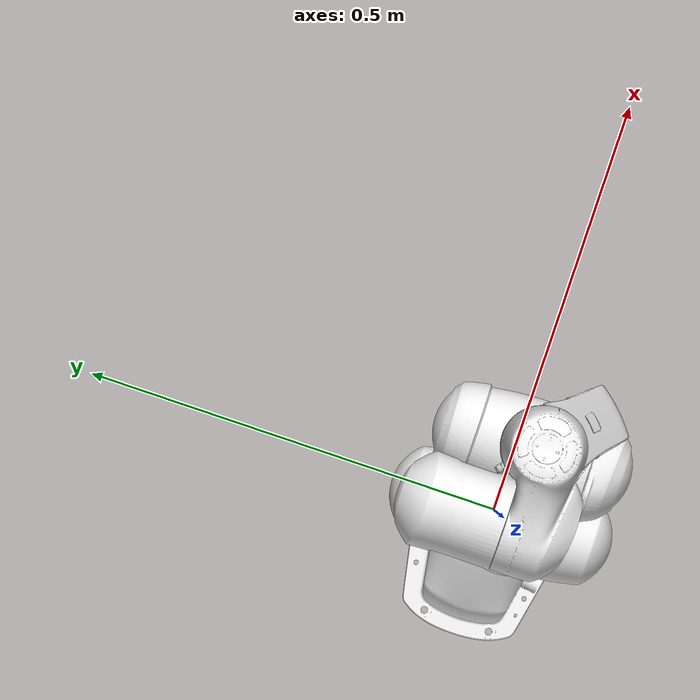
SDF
<sdf version='1.7'>
  <model name='panda'>
    <joint name='world_to_base' type='fixed'>
      <pose relative_to='__model__'>0 0 0 0 -0 0</pose>
      <parent>world</parent>
      <child>panda_link0</child>
    </joint>
    <link name='panda_link0'>
      <pose relative_to='world_to_base'>0 0 0 0 -0 0</pose>
      <inertial>
        <pose>0 0 0 0 -0 0</pose>
        <mass>3.06</mass>
        <inertia>
          <ixx>0.3</ixx>
          <ixy>0</ixy>
          <ixz>0</ixz>
          <iyy>0.3</iyy>
          <iyz>0</iyz>
          <izz>0.3</izz>
        </inertia>
      </inertial>
      <collision name='panda_link0_collision'>
        <pose>0 0 0 0 -0 0</pose>
        <geometry>
          <mesh>
            <scale>1 1 1</scale>
            <uri>model://gripper_description/meshes_panda/panda collision link0.stl</uri>
          </mesh>
        </geometry>
        <surface>
          <contact>
            <ode/>
          </contact>
          <friction>
            <ode>
              <mu>0.2</mu>
              <mu2>0.2</mu2>
            </ode>
          </friction>
        </surface>
      </collision>
      <visual name='panda_link0_visual'>
        <pose>0 0 0 0 -0 0</pose>
        <geometry>
          <mesh>
            <scale>1 1 1</scale>
            <uri>model://gripper_description/meshes_panda/panda visual link0.stl</uri>
          </mesh>
        </geometry>
        <material>
          <script>
            <name>Gazebo/White</name>
            <uri>file://media/materials/scripts/gazebo.material</uri>
          </script>
        </material>
      </visual>
    </link>
    <joint name='panda_joint1' type='revolute'>
      <pose relative_to='panda_link0'>0 0 0.333 0 -0 0</pose>
      <parent>panda_link0</parent>
      <child>panda_link1</child>
      <axis>
        <xyz>0 0 1</xyz>
        <limit>
          <lower>-2.8973</lower>
          <upper>2.8973</upper>
          <effort>87</effort>
          <velocity>2.175</velocity>
        </limit>
        <dynamics>
          <damping>1</damping>
          <friction>0.1</friction>
          <spring_reference>0</spring_reference>
          <spring_stiffness>0</spring_stiffness>
        </dynamics>
      </axis>
    </joint>
    <link name='panda_link1'>
      <pose relative_to='panda_joint1'>0 0 0 0 -0 0</pose>
      <inertial>
        <pose>0 0 0 0 -0 0</pose>
        <mass>2.34</mass>
        <inertia>
          <ixx>0.70337</ixx>
          <ixy>-0.000139</ixy>
          <ixz>0.006772</ixz>
          <iyy>0.70661</iyy>
          <iyz>0.019169</iyz>
          <izz>0.009117</izz>
        </inertia>
      </inertial>
      <collision name='panda_link1_collision'>
        <pose>0 0 0 0 -0 0</pose>
        <geometry>
          <mesh>
            <scale>1 1 1</scale>
            <uri>model://gripper_description/meshes_panda/panda collision link1.stl</uri>
          </mesh>
        </geometry>
        <surface>
          <contact>
            <ode/>
          </contact>
          <friction>
            <ode>
              <mu>0.2</mu>
              <mu2>0.2</mu2>
            </ode>
          </friction>
        </surface>
      </collision>
      <visual name='panda_link1_visual'>
        <pose>0 0 0 0 -0 0</pose>
        <geometry>
          <mesh>
            <scale>1 1 1</scale>
            <uri>model://gripper_description/meshes_panda/panda visual link1.stl</uri>
          </mesh>
        </geometry>
        <material>
          <script>
            <name>Gazebo/White</name>
            <uri>file://media/materials/scripts/gazebo.material</uri>
          </script>
        </material>
      </visual>
    </link>
    <joint name='panda_joint2' type='revolute'>
      <pose relative_to='panda_link1'>0 0 0 -1.5708 0 0</pose>
      <parent>panda_link1</parent>
      <child>panda_link2</child>
      <axis>
        <xyz>0 0 1</xyz>
        <limit>
          <lower>-1.7628</lower>
          <upper>1.7628</upper>
          <effort>87</effort>
          <velocity>2.175</velocity>
        </limit>
        <dynamics>
          <damping>1</damping>
          <friction>0.1</friction>
          <spring_reference>0</spring_reference>
          <spring_stiffness>0</spring_stiffness>
        </dynamics>
      </axis>
    </joint>
    <link name='panda_link2'>
      <pose relative_to='panda_joint2'>0 0 0 0 -0 0</pose>
      <inertial>
        <pose>0 0 0 0 -0 0</pose>
        <mass>2.36</mass>
        <inertia>
          <ixx>0.007962</ixx>
          <ixy>-0.003925</ixy>
          <ixz>0.010254</ixz>
          <iyy>0.02811</iyy>
          <iyz>0.000704</iyz>
          <izz>0.025995</izz>
        </inertia>
      </inertial>
      <collision name='panda_link2_collision'>
        <pose>0 0 0 0 -0 0</pose>
        <geometry>
          <mesh>
            <scale>1 1 1</scale>
            <uri>model://gripper_description/meshes_panda/panda collision link2.stl</uri>
          </mesh>
        </geometry>
        <surface>
          <contact>
            <ode/>
          </contact>
          <friction>
            <ode>
              <mu>0.2</mu>
              <mu2>0.2</mu2>
            </ode>
          </friction>
        </surface>
      </collision>
      <visual name='panda_link2_visual'>
        <pose>0 0 0 0 -0 0</pose>
        <geometry>
          <mesh>
            <scale>1 1 1</scale>
            <uri>model://gripper_description/meshes_panda/panda visual link2.stl</uri>
          </mesh>
        </geometry>
        <material>
          <script>
            <name>Gazebo/White</name>
            <uri>file://media/materials/scripts/gazebo.material</uri>
          </script>
        </material>
      </visual>
    </link>
    <joint name='panda_joint3' type='revolute'>
      <pose relative_to='panda_link2'>0 -0.316 0 1.5708 -0 0</pose>
      <parent>panda_link2</parent>
      <child>panda_link3</child>
      <axis>
        <xyz>0 0 1</xyz>
        <limit>
          <lower>-2.8973</lower>
          <upper>2.8973</upper>
          <effort>87</effort>
          <velocity>2.175</velocity>
        </limit>
        <dynamics>
          <damping>1</damping>
          <friction>0.1</friction>
          <spring_reference>0</spring_reference>
          <spring_stiffness>0</spring_stiffness>
        </dynamics>
      </axis>
    </joint>
    <link name='panda_link3'>
      <pose relative_to='panda_joint3'>0 0 0 0 -0 0</pose>
      <inertial>
        <pose>0 0 0 0 -0 0</pose>
        <mass>2.38</mass>
        <inertia>
          <ixx>0.037242</ixx>
          <ixy>-0.004761</ixy>
          <ixz>-0.011396</ixz>
          <iyy>0.036155</iyy>
          <iyz>-0.012805</iyz>
          <izz>0.01083</izz>
        </inertia>
      </inertial>
      <collision name='panda_link3_collision'>
        <pose>0 0 0 0 -0 0</pose>
        <geometry>
          <mesh>
            <scale>1 1 1</scale>
            <uri>model://gripper_description/meshes_panda/panda collision link3.stl</uri>
          </mesh>
        </geometry>
        <surface>
          <contact>
            <ode/>
          </contact>
          <friction>
            <ode>
              <mu>0.2</mu>
              <mu2>0.2</mu2>
            </ode>
          </friction>
        </surface>
      </collision>
      <visual name='panda_link3_visual'>
        <pose>0 0 0 0 -0 0</pose>
        <geometry>
          <mesh>
            <scale>1 1 1</scale>
            <uri>model://gripper_description/meshes_panda/panda visual link3.stl</uri>
          </mesh>
        </geometry>
        <material>
          <script>
            <name>Gazebo/White</name>
            <uri>file://media/materials/scripts/gazebo.material</uri>
          </script>
        </material>
      </visual>
    </link>
    <joint name='panda_joint4' type='revolute'>
      <pose relative_to='panda_link3'>0.0825 0 0 1.5708 -0 0</pose>
      <parent>panda_link3</parent>
      <child>panda_link4</child>
      <axis>
        <xyz>0 0 1</xyz>
        <limit>
          <lower>-3.0718</lower>
          <upper>-0.0698</upper>
          <effort>87</effort>
          <velocity>2.175</velocity>
        </limit>
        <dynamics>
          <damping>1</damping>
          <friction>0.1</friction>
          <spring_reference>0</spring_reference>
          <spring_stiffness>0</spring_stiffness>
        </dynamics>
      </axis>
    </joint>
    <link name='panda_link4'>
      <pose relative_to='panda_joint4'>0 0 0 0 -0 0</pose>
      <inertial>
        <pose>0 0 0 0 -0 0</pose>
        <mass>2.43</mass>
        <inertia>
          <ixx>0.025853</ixx>
          <ixy>0.007796</ixy>
          <ixz>-0.001332</ixz>
          <iyy>0.019552</iyy>
          <iyz>0.008641</iyz>
          <izz>0.028323</izz>
        </inertia>
      </inertial>
      <collision name='panda_link4_collision'>
        <pose>0 0 0 0 -0 0</pose>
        <geometry>
          <mesh>
            <scale>1 1 1</scale>
            <uri>model://gripper_description/meshes_panda/panda collision link4.stl</uri>
          </mesh>
        </geometry>
        <surface>
          <contact>
            <ode/>
          </contact>
          <friction>
            <ode>
              <mu>0.2</mu>
              <mu2>0.2</mu2>
            </ode>
          </friction>
        </surface>
      </collision>
      <visual name='panda_link4_visual'>
        <pose>0 0 0 0 -0 0</pose>
        <geometry>
          <mesh>
            <scale>1 1 1</scale>
            <uri>model://gripper_description/meshes_panda/panda visual link4.stl</uri>
          </mesh>
        </geometry>
        <material>
          <script>
            <name>Gazebo/White</name>
            <uri>file://media/materials/scripts/gazebo.material</uri>
          </script>
        </material>
      </visual>
    </link>
    <joint name='panda_joint5' type='revolute'>
      <pose relative_to='panda_link4'>-0.0825 0.384 0 -1.5708 0 0</pose>
      <parent>panda_link4</parent>
      <child>panda_link5</child>
      <axis>
        <xyz>0 0 1</xyz>
        <limit>
          <lower>-2.8973</lower>
          <upper>2.8973</upper>
          <effort>12</effort>
          <velocity>2.61</velocity>
        </limit>
        <dynamics>
          <damping>1</damping>
          <friction>0.1</friction>
          <spring_reference>0</spring_reference>
          <spring_stiffness>0</spring_stiffness>
        </dynamics>
      </axis>
    </joint>
    <link name='panda_link5'>
      <pose relative_to='panda_joint5'>0 0 0 0 -0 0</pose>
      <inertial>
        <pose>0 0 0 0 -0 0</pose>
        <mass>3.5</mass>
        <inertia>
          <ixx>0.035549</ixx>
          <ixy>-0.002117</ixy>
          <ixz>-0.004037</ixz>
          <iyy>0.029474</iyy>
          <iyz>0.000229</iyz>
          <izz>0.008627</izz>
        </inertia>
      </inertial>
      <collision name='panda_link5_collision'>
        <pose>0 0 0 0 -0 0</pose>
        <geometry>
          <mesh>
            <scale>1 1 1</scale>
            <uri>model://gripper_description/meshes_panda/panda collision link5.stl</uri>
          </mesh>
        </geometry>
        <surface>
          <contact>
            <ode/>
          </contact>
          <friction>
            <ode>
              <mu>0.2</mu>
              <mu2>0.2</mu2>
            </ode>
          </friction>
        </surface>
      </collision>
      <visual name='panda_link5_visual'>
        <pose>0 0 0 0 -0 0</pose>
        <geometry>
          <mesh>
            <scale>1 1 1</scale>
            <uri>model://gripper_description/meshes_panda/panda visual link5.stl</uri>
          </mesh>
        </geometry>
        <material>
          <script>
            <name>Gazebo/White</name>
            <uri>file://media/materials/scripts/gazebo.material</uri>
          </script>
        </material>
      </visual>
    </link>
    <joint name='panda_joint6' type='revolute'>
      <pose relative_to='panda_link5'>0 0 0 1.5708 -0 0</pose>
      <parent>panda_link5</parent>
      <child>panda_link6</child>
      <axis>
        <xyz>0 0 1</xyz>
        <limit>
          <lower>-0.0175</lower>
          <upper>3.7525</upper>
          <effort>12</effort>
          <velocity>2.61</velocity>
        </limit>
        <dynamics>
          <damping>1</damping>
          <friction>0.1</friction>
          <spring_reference>0</spring_reference>
          <spring_stiffness>0</spring_stiffness>
        </dynamics>
      </axis>
    </joint>
    <link name='panda_link6'>
      <pose relative_to='panda_joint6'>0 0 0 0 -0 0</pose>
      <inertial>
        <pose>0 0 0 0 -0 0</pose>
        <mass>1.47</mass>
        <inertia>
          <ixx>0.001964</ixx>
          <ixy>0.000109</ixy>
          <ixz>-0.001158</ixz>
          <iyy>0.004354</iyy>
          <iyz>0.000341</iyz>
          <izz>0.005433</izz>
        </inertia>
      </inertial>
      <collision name='panda_link6_collision'>
        <pose>0 0 0 0 -0 0</pose>
        <geometry>
          <mesh>
            <scale>1 1 1</scale>
            <uri>model://gripper_description/meshes_panda/panda collision link6.stl</uri>
          </mesh>
        </geometry>
        <surface>
          <contact>
            <ode/>
          </contact>
          <friction>
            <ode>
              <mu>0.2</mu>
              <mu2>0.2</mu2>
            </ode>
          </friction>
        </surface>
      </collision>
      <visual name='panda_link6_visual'>
        <pose>0 0 0 0 -0 0</pose>
        <geometry>
          <mesh>
            <scale>1 1 1</scale>
            <uri>model://gripper_description/meshes_panda/panda visual link6.stl</uri>
          </mesh>
        </geometry>
        <material>
          <script>
            <name>Gazebo/White</name>
            <uri>file://media/materials/scripts/gazebo.material</uri>
          </script>
        </material>
      </visual>
    </link>
    <joint name='panda_joint7' type='revolute'>
      <pose relative_to='panda_link6'>0.088 0 0 1.5708 -0 0</pose>
      <parent>panda_link6</parent>
      <child>panda_link7</child>
      <axis>
        <xyz>0 0 1</xyz>
        <limit>
          <lower>-2.8973</lower>
          <upper>2.8973</upper>
          <effort>12</effort>
          <velocity>2.61</velocity>
        </limit>
        <dynamics>
          <damping>1</damping>
          <friction>0.1</friction>
          <spring_reference>0</spring_reference>
          <spring_stiffness>0</spring_stiffness>
        </dynamics>
      </axis>
    </joint>
    <link name='panda_link7'>
      <pose relative_to='panda_joint7'>0 0 0 0 -0 0</pose>
      <inertial>
        <pose>0 0 0 0 -0 0</pose>
        <mass>0.45</mass>
        <inertia>
          <ixx>0.012616</ixx>
          <ixy>-0.000428</ixy>
          <ixz>-0.001196</ixz>
          <iyy>0.010127</iyy>
          <iyz>-0.000741</iyz>
          <izz>0.004915</izz>
        </inertia>
      </inertial>
      <collision name='panda_link7_collision'>
        <pose>0 0 0 0 -0 0</pose>
        <geometry>
          <mesh>
            <scale>1 1 1</scale>
            <uri>model://gripper_description/meshes_panda/panda collision link7.stl</uri>
          </mesh>
        </geometry>
      </collision>
      <visual name='panda_link7_visual'>
        <pose>0 0 0 0 -0 0</pose>
        <geometry>
          <mesh>
            <scale>1 1 1</scale>
            <uri>model://gripper_description/meshes_panda/panda visual link7.stl</uri>
          </mesh>
        </geometry>
      </visual>
    </link>
    <plugin name='gazebo_ros_control' filename='libgazebo_ros_control.so'/>
    <frame name='panda_joint8' attached_to='panda_link7'>
      <pose>0 0 0.107 0 -0 0</pose>
    </frame>
    <frame name='panda_link8' attached_to='panda_joint8'/>
  </model>
</sdf>
